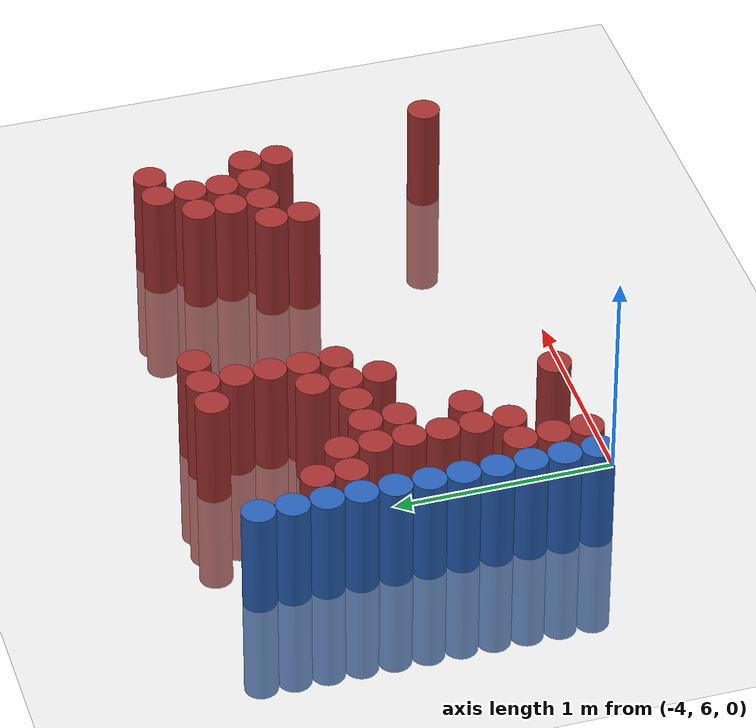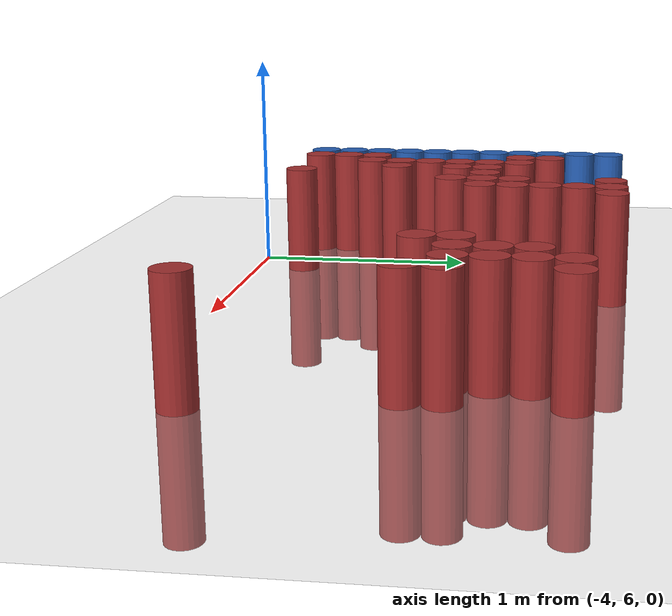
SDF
<sdf version="1.6">
 <world name="default">
  <model name="ground_plane">
   <static>1</static>
   <link name="link">
    <collision name="collision">
     <geometry><plane><normal>0 0 1</normal><size>100 100</size></plane></geometry>
     <surface><friction><ode><mu>100</mu><mu2>50</mu2></ode></friction></surface>
    </collision>
    <visual name="visual">
     <cast_shadows>0</cast_shadows>
     <geometry><plane><normal>0 0 1</normal><size>100 100</size></plane></geometry>
     <material>
      <script><uri>file://media/materials/scripts/gazebo.material</uri><name>Gazebo/Grey</name></script>
     </material>
    </visual>
   </link>
  </model>
  <model name="unit_cylinder_103">
   <static>1</static>
   <pose>-4.425000 6.225000 0.000000 0.000000 0.000000 0.000000</pose>
   <link name="link">
    <inertial>
     <mass>1</mass>
     <inertia><ixx>0.145833</ixx><ixy>0</ixy><ixz>0</ixz><iyy>0.145833</iyy><iyz>0</iyz><izz>0.125</izz></inertia>
    </inertial>
    <collision name="collision">
     <geometry><cylinder><radius>0.075000</radius><length>1</length></cylinder></geometry>
    </collision>
    <visual name="visual">
     <geometry><cylinder><radius>0.075000</radius><length>1</length></cylinder></geometry>
     <material>
      <ambient>0.152000 0.379000 0.720000 1</ambient>
      <diffuse>0.152000 0.379000 0.720000 1</diffuse>
     </material>
     <material>
      <script><name>Gazebo/Grey</name><uri>file://media/materials/scripts/gazebo.material</uri></script>
     </material>
    </visual>
   </link>
  </model>
  <model name="unit_cylinder_104">
   <static>1</static>
   <pose>-4.425000 6.375000 0.000000 0.000000 0.000000 0.000000</pose>
   <link name="link">
    <inertial>
     <mass>1</mass>
     <inertia><ixx>0.145833</ixx><ixy>0</ixy><ixz>0</ixz><iyy>0.145833</iyy><iyz>0</iyz><izz>0.125</izz></inertia>
    </inertial>
    <collision name="collision">
     <geometry><cylinder><radius>0.075000</radius><length>1</length></cylinder></geometry>
    </collision>
    <visual name="visual">
     <geometry><cylinder><radius>0.075000</radius><length>1</length></cylinder></geometry>
     <material>
      <ambient>0.152000 0.379000 0.720000 1</ambient>
      <diffuse>0.152000 0.379000 0.720000 1</diffuse>
     </material>
     <material>
      <script><name>Gazebo/Grey</name><uri>file://media/materials/scripts/gazebo.material</uri></script>
     </material>
    </visual>
   </link>
  </model>
  <model name="unit_cylinder_105">
   <static>1</static>
   <pose>-4.425000 6.525000 0.000000 0.000000 0.000000 0.000000</pose>
   <link name="link">
    <inertial>
     <mass>1</mass>
     <inertia><ixx>0.145833</ixx><ixy>0</ixy><ixz>0</ixz><iyy>0.145833</iyy><iyz>0</iyz><izz>0.125</izz></inertia>
    </inertial>
    <collision name="collision">
     <geometry><cylinder><radius>0.075000</radius><length>1</length></cylinder></geometry>
    </collision>
    <visual name="visual">
     <geometry><cylinder><radius>0.075000</radius><length>1</length></cylinder></geometry>
     <material>
      <ambient>0.152000 0.379000 0.720000 1</ambient>
      <diffuse>0.152000 0.379000 0.720000 1</diffuse>
     </material>
     <material>
      <script><name>Gazebo/Grey</name><uri>file://media/materials/scripts/gazebo.material</uri></script>
     </material>
    </visual>
   </link>
  </model>
  <model name="unit_cylinder_106">
   <static>1</static>
   <pose>-4.425000 6.675000 0.000000 0.000000 0.000000 0.000000</pose>
   <link name="link">
    <inertial>
     <mass>1</mass>
     <inertia><ixx>0.145833</ixx><ixy>0</ixy><ixz>0</ixz><iyy>0.145833</iyy><iyz>0</iyz><izz>0.125</izz></inertia>
    </inertial>
    <collision name="collision">
     <geometry><cylinder><radius>0.075000</radius><length>1</length></cylinder></geometry>
    </collision>
    <visual name="visual">
     <geometry><cylinder><radius>0.075000</radius><length>1</length></cylinder></geometry>
     <material>
      <ambient>0.152000 0.379000 0.720000 1</ambient>
      <diffuse>0.152000 0.379000 0.720000 1</diffuse>
     </material>
     <material>
      <script><name>Gazebo/Grey</name><uri>file://media/materials/scripts/gazebo.material</uri></script>
     </material>
    </visual>
   </link>
  </model>
  <model name="unit_cylinder_107">
   <static>1</static>
   <pose>-4.425000 6.825000 0.000000 0.000000 0.000000 0.000000</pose>
   <link name="link">
    <inertial>
     <mass>1</mass>
     <inertia><ixx>0.145833</ixx><ixy>0</ixy><ixz>0</ixz><iyy>0.145833</iyy><iyz>0</iyz><izz>0.125</izz></inertia>
    </inertial>
    <collision name="collision">
     <geometry><cylinder><radius>0.075000</radius><length>1</length></cylinder></geometry>
    </collision>
    <visual name="visual">
     <geometry><cylinder><radius>0.075000</radius><length>1</length></cylinder></geometry>
     <material>
      <ambient>0.152000 0.379000 0.720000 1</ambient>
      <diffuse>0.152000 0.379000 0.720000 1</diffuse>
     </material>
     <material>
      <script><name>Gazebo/Grey</name><uri>file://media/materials/scripts/gazebo.material</uri></script>
     </material>
    </visual>
   </link>
  </model>
  <model name="unit_cylinder_108">
   <static>1</static>
   <pose>-4.425000 6.975000 0.000000 0.000000 0.000000 0.000000</pose>
   <link name="link">
    <inertial>
     <mass>1</mass>
     <inertia><ixx>0.145833</ixx><ixy>0</ixy><ixz>0</ixz><iyy>0.145833</iyy><iyz>0</iyz><izz>0.125</izz></inertia>
    </inertial>
    <collision name="collision">
     <geometry><cylinder><radius>0.075000</radius><length>1</length></cylinder></geometry>
    </collision>
    <visual name="visual">
     <geometry><cylinder><radius>0.075000</radius><length>1</length></cylinder></geometry>
     <material>
      <ambient>0.152000 0.379000 0.720000 1</ambient>
      <diffuse>0.152000 0.379000 0.720000 1</diffuse>
     </material>
     <material>
      <script><name>Gazebo/Grey</name><uri>file://media/materials/scripts/gazebo.material</uri></script>
     </material>
    </visual>
   </link>
  </model>
  <model name="unit_cylinder_109">
   <static>1</static>
   <pose>-4.425000 7.125000 0.000000 0.000000 0.000000 0.000000</pose>
   <link name="link">
    <inertial>
     <mass>1</mass>
     <inertia><ixx>0.145833</ixx><ixy>0</ixy><ixz>0</ixz><iyy>0.145833</iyy><iyz>0</iyz><izz>0.125</izz></inertia>
    </inertial>
    <collision name="collision">
     <geometry><cylinder><radius>0.075000</radius><length>1</length></cylinder></geometry>
    </collision>
    <visual name="visual">
     <geometry><cylinder><radius>0.075000</radius><length>1</length></cylinder></geometry>
     <material>
      <ambient>0.152000 0.379000 0.720000 1</ambient>
      <diffuse>0.152000 0.379000 0.720000 1</diffuse>
     </material>
     <material>
      <script><name>Gazebo/Grey</name><uri>file://media/materials/scripts/gazebo.material</uri></script>
     </material>
    </visual>
   </link>
  </model>
  <model name="unit_cylinder_110">
   <static>1</static>
   <pose>-4.425000 7.275000 0.000000 0.000000 0.000000 0.000000</pose>
   <link name="link">
    <inertial>
     <mass>1</mass>
     <inertia><ixx>0.145833</ixx><ixy>0</ixy><ixz>0</ixz><iyy>0.145833</iyy><iyz>0</iyz><izz>0.125</izz></inertia>
    </inertial>
    <collision name="collision">
     <geometry><cylinder><radius>0.075000</radius><length>1</length></cylinder></geometry>
    </collision>
    <visual name="visual">
     <geometry><cylinder><radius>0.075000</radius><length>1</length></cylinder></geometry>
     <material>
      <ambient>0.152000 0.379000 0.720000 1</ambient>
      <diffuse>0.152000 0.379000 0.720000 1</diffuse>
     </material>
     <material>
      <script><name>Gazebo/Grey</name><uri>file://media/materials/scripts/gazebo.material</uri></script>
     </material>
    </visual>
   </link>
  </model>
  <model name="unit_cylinder_111">
   <static>1</static>
   <pose>-4.425000 7.425000 0.000000 0.000000 0.000000 0.000000</pose>
   <link name="link">
    <inertial>
     <mass>1</mass>
     <inertia><ixx>0.145833</ixx><ixy>0</ixy><ixz>0</ixz><iyy>0.145833</iyy><iyz>0</iyz><izz>0.125</izz></inertia>
    </inertial>
    <collision name="collision">
     <geometry><cylinder><radius>0.075000</radius><length>1</length></cylinder></geometry>
    </collision>
    <visual name="visual">
     <geometry><cylinder><radius>0.075000</radius><length>1</length></cylinder></geometry>
     <material>
      <ambient>0.152000 0.379000 0.720000 1</ambient>
      <diffuse>0.152000 0.379000 0.720000 1</diffuse>
     </material>
     <material>
      <script><name>Gazebo/Grey</name><uri>file://media/materials/scripts/gazebo.material</uri></script>
     </material>
    </visual>
   </link>
  </model>
  <model name="unit_cylinder_112">
   <static>1</static>
   <pose>-4.425000 7.575000 0.000000 0.000000 0.000000 0.000000</pose>
   <link name="link">
    <inertial>
     <mass>1</mass>
     <inertia><ixx>0.145833</ixx><ixy>0</ixy><ixz>0</ixz><iyy>0.145833</iyy><iyz>0</iyz><izz>0.125</izz></inertia>
    </inertial>
    <collision name="collision">
     <geometry><cylinder><radius>0.075000</radius><length>1</length></cylinder></geometry>
    </collision>
    <visual name="visual">
     <geometry><cylinder><radius>0.075000</radius><length>1</length></cylinder></geometry>
     <material>
      <ambient>0.152000 0.379000 0.720000 1</ambient>
      <diffuse>0.152000 0.379000 0.720000 1</diffuse>
     </material>
     <material>
      <script><name>Gazebo/Grey</name><uri>file://media/materials/scripts/gazebo.material</uri></script>
     </material>
    </visual>
   </link>
  </model>
  <model name="unit_cylinder_113">
   <static>1</static>
   <pose>-4.425000 7.725000 0.000000 0.000000 0.000000 0.000000</pose>
   <link name="link">
    <inertial>
     <mass>1</mass>
     <inertia><ixx>0.145833</ixx><ixy>0</ixy><ixz>0</ixz><iyy>0.145833</iyy><iyz>0</iyz><izz>0.125</izz></inertia>
    </inertial>
    <collision name="collision">
     <geometry><cylinder><radius>0.075000</radius><length>1</length></cylinder></geometry>
    </collision>
    <visual name="visual">
     <geometry><cylinder><radius>0.075000</radius><length>1</length></cylinder></geometry>
     <material>
      <ambient>0.152000 0.379000 0.720000 1</ambient>
      <diffuse>0.152000 0.379000 0.720000 1</diffuse>
     </material>
     <material>
      <script><name>Gazebo/Grey</name><uri>file://media/materials/scripts/gazebo.material</uri></script>
     </material>
    </visual>
   </link>
  </model>
  <model name="unit_cylinder_129">
   <static>1</static>
   <pose>-4.275000 6.225000 0.000000 0.000000 0.000000 0.000000</pose>
   <link name="link">
    <inertial>
     <mass>1</mass>
     <inertia><ixx>0.145833</ixx><ixy>0</ixy><ixz>0</ixz><iyy>0.145833</iyy><iyz>0</iyz><izz>0.125</izz></inertia>
    </inertial>
    <collision name="collision">
     <geometry><cylinder><radius>0.075000</radius><length>1</length></cylinder></geometry>
    </collision>
    <visual name="visual">
     <geometry><cylinder><radius>0.075000</radius><length>1</length></cylinder></geometry>
     <material>
      <ambient>0.648000 0.192000 0.192000 1</ambient>
      <diffuse>0.648000 0.192000 0.192000 1</diffuse>
     </material>
     <material>
      <script><name>Gazebo/Grey</name><uri>file://media/materials/scripts/gazebo.material</uri></script>
     </material>
    </visual>
   </link>
  </model>
  <model name="unit_cylinder_130">
   <static>1</static>
   <pose>-4.275000 6.375000 0.000000 0.000000 0.000000 0.000000</pose>
   <link name="link">
    <inertial>
     <mass>1</mass>
     <inertia><ixx>0.145833</ixx><ixy>0</ixy><ixz>0</ixz><iyy>0.145833</iyy><iyz>0</iyz><izz>0.125</izz></inertia>
    </inertial>
    <collision name="collision">
     <geometry><cylinder><radius>0.075000</radius><length>1</length></cylinder></geometry>
    </collision>
    <visual name="visual">
     <geometry><cylinder><radius>0.075000</radius><length>1</length></cylinder></geometry>
     <material>
      <ambient>0.648000 0.192000 0.192000 1</ambient>
      <diffuse>0.648000 0.192000 0.192000 1</diffuse>
     </material>
     <material>
      <script><name>Gazebo/Grey</name><uri>file://media/materials/scripts/gazebo.material</uri></script>
     </material>
    </visual>
   </link>
  </model>
  <model name="unit_cylinder_131">
   <static>1</static>
   <pose>-4.275000 6.525000 0.000000 0.000000 0.000000 0.000000</pose>
   <link name="link">
    <inertial>
     <mass>1</mass>
     <inertia><ixx>0.145833</ixx><ixy>0</ixy><ixz>0</ixz><iyy>0.145833</iyy><iyz>0</iyz><izz>0.125</izz></inertia>
    </inertial>
    <collision name="collision">
     <geometry><cylinder><radius>0.075000</radius><length>1</length></cylinder></geometry>
    </collision>
    <visual name="visual">
     <geometry><cylinder><radius>0.075000</radius><length>1</length></cylinder></geometry>
     <material>
      <ambient>0.648000 0.192000 0.192000 1</ambient>
      <diffuse>0.648000 0.192000 0.192000 1</diffuse>
     </material>
     <material>
      <script><name>Gazebo/Grey</name><uri>file://media/materials/scripts/gazebo.material</uri></script>
     </material>
    </visual>
   </link>
  </model>
  <model name="unit_cylinder_132">
   <static>1</static>
   <pose>-4.275000 7.275000 0.000000 0.000000 0.000000 0.000000</pose>
   <link name="link">
    <inertial>
     <mass>1</mass>
     <inertia><ixx>0.145833</ixx><ixy>0</ixy><ixz>0</ixz><iyy>0.145833</iyy><iyz>0</iyz><izz>0.125</izz></inertia>
    </inertial>
    <collision name="collision">
     <geometry><cylinder><radius>0.075000</radius><length>1</length></cylinder></geometry>
    </collision>
    <visual name="visual">
     <geometry><cylinder><radius>0.075000</radius><length>1</length></cylinder></geometry>
     <material>
      <ambient>0.648000 0.192000 0.192000 1</ambient>
      <diffuse>0.648000 0.192000 0.192000 1</diffuse>
     </material>
     <material>
      <script><name>Gazebo/Grey</name><uri>file://media/materials/scripts/gazebo.material</uri></script>
     </material>
    </visual>
   </link>
  </model>
  <model name="unit_cylinder_133">
   <static>1</static>
   <pose>-4.275000 7.425000 0.000000 0.000000 0.000000 0.000000</pose>
   <link name="link">
    <inertial>
     <mass>1</mass>
     <inertia><ixx>0.145833</ixx><ixy>0</ixy><ixz>0</ixz><iyy>0.145833</iyy><iyz>0</iyz><izz>0.125</izz></inertia>
    </inertial>
    <collision name="collision">
     <geometry><cylinder><radius>0.075000</radius><length>1</length></cylinder></geometry>
    </collision>
    <visual name="visual">
     <geometry><cylinder><radius>0.075000</radius><length>1</length></cylinder></geometry>
     <material>
      <ambient>0.648000 0.192000 0.192000 1</ambient>
      <diffuse>0.648000 0.192000 0.192000 1</diffuse>
     </material>
     <material>
      <script><name>Gazebo/Grey</name><uri>file://media/materials/scripts/gazebo.material</uri></script>
     </material>
    </visual>
   </link>
  </model>
  <model name="unit_cylinder_140">
   <static>1</static>
   <pose>-4.125000 6.525000 0.000000 0.000000 0.000000 0.000000</pose>
   <link name="link">
    <inertial>
     <mass>1</mass>
     <inertia><ixx>0.145833</ixx><ixy>0</ixy><ixz>0</ixz><iyy>0.145833</iyy><iyz>0</iyz><izz>0.125</izz></inertia>
    </inertial>
    <collision name="collision">
     <geometry><cylinder><radius>0.075000</radius><length>1</length></cylinder></geometry>
    </collision>
    <visual name="visual">
     <geometry><cylinder><radius>0.075000</radius><length>1</length></cylinder></geometry>
     <material>
      <ambient>0.648000 0.192000 0.192000 1</ambient>
      <diffuse>0.648000 0.192000 0.192000 1</diffuse>
     </material>
     <material>
      <script><name>Gazebo/Grey</name><uri>file://media/materials/scripts/gazebo.material</uri></script>
     </material>
    </visual>
   </link>
  </model>
  <model name="unit_cylinder_141">
   <static>1</static>
   <pose>-4.125000 6.675000 0.000000 0.000000 0.000000 0.000000</pose>
   <link name="link">
    <inertial>
     <mass>1</mass>
     <inertia><ixx>0.145833</ixx><ixy>0</ixy><ixz>0</ixz><iyy>0.145833</iyy><iyz>0</iyz><izz>0.125</izz></inertia>
    </inertial>
    <collision name="collision">
     <geometry><cylinder><radius>0.075000</radius><length>1</length></cylinder></geometry>
    </collision>
    <visual name="visual">
     <geometry><cylinder><radius>0.075000</radius><length>1</length></cylinder></geometry>
     <material>
      <ambient>0.648000 0.192000 0.192000 1</ambient>
      <diffuse>0.648000 0.192000 0.192000 1</diffuse>
     </material>
     <material>
      <script><name>Gazebo/Grey</name><uri>file://media/materials/scripts/gazebo.material</uri></script>
     </material>
    </visual>
   </link>
  </model>
  <model name="unit_cylinder_142">
   <static>1</static>
   <pose>-4.125000 6.825000 0.000000 0.000000 0.000000 0.000000</pose>
   <link name="link">
    <inertial>
     <mass>1</mass>
     <inertia><ixx>0.145833</ixx><ixy>0</ixy><ixz>0</ixz><iyy>0.145833</iyy><iyz>0</iyz><izz>0.125</izz></inertia>
    </inertial>
    <collision name="collision">
     <geometry><cylinder><radius>0.075000</radius><length>1</length></cylinder></geometry>
    </collision>
    <visual name="visual">
     <geometry><cylinder><radius>0.075000</radius><length>1</length></cylinder></geometry>
     <material>
      <ambient>0.648000 0.192000 0.192000 1</ambient>
      <diffuse>0.648000 0.192000 0.192000 1</diffuse>
     </material>
     <material>
      <script><name>Gazebo/Grey</name><uri>file://media/materials/scripts/gazebo.material</uri></script>
     </material>
    </visual>
   </link>
  </model>
  <model name="unit_cylinder_143">
   <static>1</static>
   <pose>-4.125000 6.975000 0.000000 0.000000 0.000000 0.000000</pose>
   <link name="link">
    <inertial>
     <mass>1</mass>
     <inertia><ixx>0.145833</ixx><ixy>0</ixy><ixz>0</ixz><iyy>0.145833</iyy><iyz>0</iyz><izz>0.125</izz></inertia>
    </inertial>
    <collision name="collision">
     <geometry><cylinder><radius>0.075000</radius><length>1</length></cylinder></geometry>
    </collision>
    <visual name="visual">
     <geometry><cylinder><radius>0.075000</radius><length>1</length></cylinder></geometry>
     <material>
      <ambient>0.648000 0.192000 0.192000 1</ambient>
      <diffuse>0.648000 0.192000 0.192000 1</diffuse>
     </material>
     <material>
      <script><name>Gazebo/Grey</name><uri>file://media/materials/scripts/gazebo.material</uri></script>
     </material>
    </visual>
   </link>
  </model>
  <model name="unit_cylinder_144">
   <static>1</static>
   <pose>-4.125000 7.125000 0.000000 0.000000 0.000000 0.000000</pose>
   <link name="link">
    <inertial>
     <mass>1</mass>
     <inertia><ixx>0.145833</ixx><ixy>0</ixy><ixz>0</ixz><iyy>0.145833</iyy><iyz>0</iyz><izz>0.125</izz></inertia>
    </inertial>
    <collision name="collision">
     <geometry><cylinder><radius>0.075000</radius><length>1</length></cylinder></geometry>
    </collision>
    <visual name="visual">
     <geometry><cylinder><radius>0.075000</radius><length>1</length></cylinder></geometry>
     <material>
      <ambient>0.648000 0.192000 0.192000 1</ambient>
      <diffuse>0.648000 0.192000 0.192000 1</diffuse>
     </material>
     <material>
      <script><name>Gazebo/Grey</name><uri>file://media/materials/scripts/gazebo.material</uri></script>
     </material>
    </visual>
   </link>
  </model>
  <model name="unit_cylinder_145">
   <static>1</static>
   <pose>-4.125000 7.275000 0.000000 0.000000 0.000000 0.000000</pose>
   <link name="link">
    <inertial>
     <mass>1</mass>
     <inertia><ixx>0.145833</ixx><ixy>0</ixy><ixz>0</ixz><iyy>0.145833</iyy><iyz>0</iyz><izz>0.125</izz></inertia>
    </inertial>
    <collision name="collision">
     <geometry><cylinder><radius>0.075000</radius><length>1</length></cylinder></geometry>
    </collision>
    <visual name="visual">
     <geometry><cylinder><radius>0.075000</radius><length>1</length></cylinder></geometry>
     <material>
      <ambient>0.648000 0.192000 0.192000 1</ambient>
      <diffuse>0.648000 0.192000 0.192000 1</diffuse>
     </material>
     <material>
      <script><name>Gazebo/Grey</name><uri>file://media/materials/scripts/gazebo.material</uri></script>
     </material>
    </visual>
   </link>
  </model>
  <model name="unit_cylinder_156">
   <static>1</static>
   <pose>-3.975000 6.675000 0.000000 0.000000 0.000000 0.000000</pose>
   <link name="link">
    <inertial>
     <mass>1</mass>
     <inertia><ixx>0.145833</ixx><ixy>0</ixy><ixz>0</ixz><iyy>0.145833</iyy><iyz>0</iyz><izz>0.125</izz></inertia>
    </inertial>
    <collision name="collision">
     <geometry><cylinder><radius>0.075000</radius><length>1</length></cylinder></geometry>
    </collision>
    <visual name="visual">
     <geometry><cylinder><radius>0.075000</radius><length>1</length></cylinder></geometry>
     <material>
      <ambient>0.648000 0.192000 0.192000 1</ambient>
      <diffuse>0.648000 0.192000 0.192000 1</diffuse>
     </material>
     <material>
      <script><name>Gazebo/Grey</name><uri>file://media/materials/scripts/gazebo.material</uri></script>
     </material>
    </visual>
   </link>
  </model>
  <model name="unit_cylinder_157">
   <static>1</static>
   <pose>-3.975000 6.975000 0.000000 0.000000 0.000000 0.000000</pose>
   <link name="link">
    <inertial>
     <mass>1</mass>
     <inertia><ixx>0.145833</ixx><ixy>0</ixy><ixz>0</ixz><iyy>0.145833</iyy><iyz>0</iyz><izz>0.125</izz></inertia>
    </inertial>
    <collision name="collision">
     <geometry><cylinder><radius>0.075000</radius><length>1</length></cylinder></geometry>
    </collision>
    <visual name="visual">
     <geometry><cylinder><radius>0.075000</radius><length>1</length></cylinder></geometry>
     <material>
      <ambient>0.648000 0.192000 0.192000 1</ambient>
      <diffuse>0.648000 0.192000 0.192000 1</diffuse>
     </material>
     <material>
      <script><name>Gazebo/Grey</name><uri>file://media/materials/scripts/gazebo.material</uri></script>
     </material>
    </visual>
   </link>
  </model>
  <model name="unit_cylinder_158">
   <static>1</static>
   <pose>-3.975000 7.125000 0.000000 0.000000 0.000000 0.000000</pose>
   <link name="link">
    <inertial>
     <mass>1</mass>
     <inertia><ixx>0.145833</ixx><ixy>0</ixy><ixz>0</ixz><iyy>0.145833</iyy><iyz>0</iyz><izz>0.125</izz></inertia>
    </inertial>
    <collision name="collision">
     <geometry><cylinder><radius>0.075000</radius><length>1</length></cylinder></geometry>
    </collision>
    <visual name="visual">
     <geometry><cylinder><radius>0.075000</radius><length>1</length></cylinder></geometry>
     <material>
      <ambient>0.648000 0.192000 0.192000 1</ambient>
      <diffuse>0.648000 0.192000 0.192000 1</diffuse>
     </material>
     <material>
      <script><name>Gazebo/Grey</name><uri>file://media/materials/scripts/gazebo.material</uri></script>
     </material>
    </visual>
   </link>
  </model>
  <model name="unit_cylinder_166">
   <static>1</static>
   <pose>-3.825000 6.225000 0.000000 0.000000 0.000000 0.000000</pose>
   <link name="link">
    <inertial>
     <mass>1</mass>
     <inertia><ixx>0.145833</ixx><ixy>0</ixy><ixz>0</ixz><iyy>0.145833</iyy><iyz>0</iyz><izz>0.125</izz></inertia>
    </inertial>
    <collision name="collision">
     <geometry><cylinder><radius>0.075000</radius><length>1</length></cylinder></geometry>
    </collision>
    <visual name="visual">
     <geometry><cylinder><radius>0.075000</radius><length>1</length></cylinder></geometry>
     <material>
      <ambient>0.648000 0.192000 0.192000 1</ambient>
      <diffuse>0.648000 0.192000 0.192000 1</diffuse>
     </material>
     <material>
      <script><name>Gazebo/Grey</name><uri>file://media/materials/scripts/gazebo.material</uri></script>
     </material>
    </visual>
   </link>
  </model>
  <model name="unit_cylinder_167">
   <static>1</static>
   <pose>-3.825000 7.125000 0.000000 0.000000 0.000000 0.000000</pose>
   <link name="link">
    <inertial>
     <mass>1</mass>
     <inertia><ixx>0.145833</ixx><ixy>0</ixy><ixz>0</ixz><iyy>0.145833</iyy><iyz>0</iyz><izz>0.125</izz></inertia>
    </inertial>
    <collision name="collision">
     <geometry><cylinder><radius>0.075000</radius><length>1</length></cylinder></geometry>
    </collision>
    <visual name="visual">
     <geometry><cylinder><radius>0.075000</radius><length>1</length></cylinder></geometry>
     <material>
      <ambient>0.648000 0.192000 0.192000 1</ambient>
      <diffuse>0.648000 0.192000 0.192000 1</diffuse>
     </material>
     <material>
      <script><name>Gazebo/Grey</name><uri>file://media/materials/scripts/gazebo.material</uri></script>
     </material>
    </visual>
   </link>
  </model>
  <model name="unit_cylinder_172">
   <static>1</static>
   <pose>-3.675000 6.975000 0.000000 0.000000 0.000000 0.000000</pose>
   <link name="link">
    <inertial>
     <mass>1</mass>
     <inertia><ixx>0.145833</ixx><ixy>0</ixy><ixz>0</ixz><iyy>0.145833</iyy><iyz>0</iyz><izz>0.125</izz></inertia>
    </inertial>
    <collision name="collision">
     <geometry><cylinder><radius>0.075000</radius><length>1</length></cylinder></geometry>
    </collision>
    <visual name="visual">
     <geometry><cylinder><radius>0.075000</radius><length>1</length></cylinder></geometry>
     <material>
      <ambient>0.648000 0.192000 0.192000 1</ambient>
      <diffuse>0.648000 0.192000 0.192000 1</diffuse>
     </material>
     <material>
      <script><name>Gazebo/Grey</name><uri>file://media/materials/scripts/gazebo.material</uri></script>
     </material>
    </visual>
   </link>
  </model>
  <model name="unit_cylinder_173">
   <static>1</static>
   <pose>-3.675000 7.125000 0.000000 0.000000 0.000000 0.000000</pose>
   <link name="link">
    <inertial>
     <mass>1</mass>
     <inertia><ixx>0.145833</ixx><ixy>0</ixy><ixz>0</ixz><iyy>0.145833</iyy><iyz>0</iyz><izz>0.125</izz></inertia>
    </inertial>
    <collision name="collision">
     <geometry><cylinder><radius>0.075000</radius><length>1</length></cylinder></geometry>
    </collision>
    <visual name="visual">
     <geometry><cylinder><radius>0.075000</radius><length>1</length></cylinder></geometry>
     <material>
      <ambient>0.648000 0.192000 0.192000 1</ambient>
      <diffuse>0.648000 0.192000 0.192000 1</diffuse>
     </material>
     <material>
      <script><name>Gazebo/Grey</name><uri>file://media/materials/scripts/gazebo.material</uri></script>
     </material>
    </visual>
   </link>
  </model>
  <model name="unit_cylinder_174">
   <static>1</static>
   <pose>-3.675000 7.275000 0.000000 0.000000 0.000000 0.000000</pose>
   <link name="link">
    <inertial>
     <mass>1</mass>
     <inertia><ixx>0.145833</ixx><ixy>0</ixy><ixz>0</ixz><iyy>0.145833</iyy><iyz>0</iyz><izz>0.125</izz></inertia>
    </inertial>
    <collision name="collision">
     <geometry><cylinder><radius>0.075000</radius><length>1</length></cylinder></geometry>
    </collision>
    <visual name="visual">
     <geometry><cylinder><radius>0.075000</radius><length>1</length></cylinder></geometry>
     <material>
      <ambient>0.648000 0.192000 0.192000 1</ambient>
      <diffuse>0.648000 0.192000 0.192000 1</diffuse>
     </material>
     <material>
      <script><name>Gazebo/Grey</name><uri>file://media/materials/scripts/gazebo.material</uri></script>
     </material>
    </visual>
   </link>
  </model>
  <model name="unit_cylinder_175">
   <static>1</static>
   <pose>-3.675000 7.725000 0.000000 0.000000 0.000000 0.000000</pose>
   <link name="link">
    <inertial>
     <mass>1</mass>
     <inertia><ixx>0.145833</ixx><ixy>0</ixy><ixz>0</ixz><iyy>0.145833</iyy><iyz>0</iyz><izz>0.125</izz></inertia>
    </inertial>
    <collision name="collision">
     <geometry><cylinder><radius>0.075000</radius><length>1</length></cylinder></geometry>
    </collision>
    <visual name="visual">
     <geometry><cylinder><radius>0.075000</radius><length>1</length></cylinder></geometry>
     <material>
      <ambient>0.648000 0.192000 0.192000 1</ambient>
      <diffuse>0.648000 0.192000 0.192000 1</diffuse>
     </material>
     <material>
      <script><name>Gazebo/Grey</name><uri>file://media/materials/scripts/gazebo.material</uri></script>
     </material>
    </visual>
   </link>
  </model>
  <model name="unit_cylinder_180">
   <static>1</static>
   <pose>-3.525000 7.125000 0.000000 0.000000 0.000000 0.000000</pose>
   <link name="link">
    <inertial>
     <mass>1</mass>
     <inertia><ixx>0.145833</ixx><ixy>0</ixy><ixz>0</ixz><iyy>0.145833</iyy><iyz>0</iyz><izz>0.125</izz></inertia>
    </inertial>
    <collision name="collision">
     <geometry><cylinder><radius>0.075000</radius><length>1</length></cylinder></geometry>
    </collision>
    <visual name="visual">
     <geometry><cylinder><radius>0.075000</radius><length>1</length></cylinder></geometry>
     <material>
      <ambient>0.648000 0.192000 0.192000 1</ambient>
      <diffuse>0.648000 0.192000 0.192000 1</diffuse>
     </material>
     <material>
      <script><name>Gazebo/Grey</name><uri>file://media/materials/scripts/gazebo.material</uri></script>
     </material>
    </visual>
   </link>
  </model>
  <model name="unit_cylinder_181">
   <static>1</static>
   <pose>-3.525000 7.275000 0.000000 0.000000 0.000000 0.000000</pose>
   <link name="link">
    <inertial>
     <mass>1</mass>
     <inertia><ixx>0.145833</ixx><ixy>0</ixy><ixz>0</ixz><iyy>0.145833</iyy><iyz>0</iyz><izz>0.125</izz></inertia>
    </inertial>
    <collision name="collision">
     <geometry><cylinder><radius>0.075000</radius><length>1</length></cylinder></geometry>
    </collision>
    <visual name="visual">
     <geometry><cylinder><radius>0.075000</radius><length>1</length></cylinder></geometry>
     <material>
      <ambient>0.648000 0.192000 0.192000 1</ambient>
      <diffuse>0.648000 0.192000 0.192000 1</diffuse>
     </material>
     <material>
      <script><name>Gazebo/Grey</name><uri>file://media/materials/scripts/gazebo.material</uri></script>
     </material>
    </visual>
   </link>
  </model>
  <model name="unit_cylinder_182">
   <static>1</static>
   <pose>-3.525000 7.425000 0.000000 0.000000 0.000000 0.000000</pose>
   <link name="link">
    <inertial>
     <mass>1</mass>
     <inertia><ixx>0.145833</ixx><ixy>0</ixy><ixz>0</ixz><iyy>0.145833</iyy><iyz>0</iyz><izz>0.125</izz></inertia>
    </inertial>
    <collision name="collision">
     <geometry><cylinder><radius>0.075000</radius><length>1</length></cylinder></geometry>
    </collision>
    <visual name="visual">
     <geometry><cylinder><radius>0.075000</radius><length>1</length></cylinder></geometry>
     <material>
      <ambient>0.648000 0.192000 0.192000 1</ambient>
      <diffuse>0.648000 0.192000 0.192000 1</diffuse>
     </material>
     <material>
      <script><name>Gazebo/Grey</name><uri>file://media/materials/scripts/gazebo.material</uri></script>
     </material>
    </visual>
   </link>
  </model>
  <model name="unit_cylinder_183">
   <static>1</static>
   <pose>-3.525000 7.575000 0.000000 0.000000 0.000000 0.000000</pose>
   <link name="link">
    <inertial>
     <mass>1</mass>
     <inertia><ixx>0.145833</ixx><ixy>0</ixy><ixz>0</ixz><iyy>0.145833</iyy><iyz>0</iyz><izz>0.125</izz></inertia>
    </inertial>
    <collision name="collision">
     <geometry><cylinder><radius>0.075000</radius><length>1</length></cylinder></geometry>
    </collision>
    <visual name="visual">
     <geometry><cylinder><radius>0.075000</radius><length>1</length></cylinder></geometry>
     <material>
      <ambient>0.648000 0.192000 0.192000 1</ambient>
      <diffuse>0.648000 0.192000 0.192000 1</diffuse>
     </material>
     <material>
      <script><name>Gazebo/Grey</name><uri>file://media/materials/scripts/gazebo.material</uri></script>
     </material>
    </visual>
   </link>
  </model>
  <model name="unit_cylinder_184">
   <static>1</static>
   <pose>-3.525000 7.725000 0.000000 0.000000 0.000000 0.000000</pose>
   <link name="link">
    <inertial>
     <mass>1</mass>
     <inertia><ixx>0.145833</ixx><ixy>0</ixy><ixz>0</ixz><iyy>0.145833</iyy><iyz>0</iyz><izz>0.125</izz></inertia>
    </inertial>
    <collision name="collision">
     <geometry><cylinder><radius>0.075000</radius><length>1</length></cylinder></geometry>
    </collision>
    <visual name="visual">
     <geometry><cylinder><radius>0.075000</radius><length>1</length></cylinder></geometry>
     <material>
      <ambient>0.648000 0.192000 0.192000 1</ambient>
      <diffuse>0.648000 0.192000 0.192000 1</diffuse>
     </material>
     <material>
      <script><name>Gazebo/Grey</name><uri>file://media/materials/scripts/gazebo.material</uri></script>
     </material>
    </visual>
   </link>
  </model>
  <model name="unit_cylinder_189">
   <static>1</static>
   <pose>-3.375000 7.725000 0.000000 0.000000 0.000000 0.000000</pose>
   <link name="link">
    <inertial>
     <mass>1</mass>
     <inertia><ixx>0.145833</ixx><ixy>0</ixy><ixz>0</ixz><iyy>0.145833</iyy><iyz>0</iyz><izz>0.125</izz></inertia>
    </inertial>
    <collision name="collision">
     <geometry><cylinder><radius>0.075000</radius><length>1</length></cylinder></geometry>
    </collision>
    <visual name="visual">
     <geometry><cylinder><radius>0.075000</radius><length>1</length></cylinder></geometry>
     <material>
      <ambient>0.648000 0.192000 0.192000 1</ambient>
      <diffuse>0.648000 0.192000 0.192000 1</diffuse>
     </material>
     <material>
      <script><name>Gazebo/Grey</name><uri>file://media/materials/scripts/gazebo.material</uri></script>
     </material>
    </visual>
   </link>
  </model>
  <model name="unit_cylinder_196">
   <static>1</static>
   <pose>-2.475000 6.975000 0.000000 0.000000 0.000000 0.000000</pose>
   <link name="link">
    <inertial>
     <mass>1</mass>
     <inertia><ixx>0.145833</ixx><ixy>0</ixy><ixz>0</ixz><iyy>0.145833</iyy><iyz>0</iyz><izz>0.125</izz></inertia>
    </inertial>
    <collision name="collision">
     <geometry><cylinder><radius>0.075000</radius><length>1</length></cylinder></geometry>
    </collision>
    <visual name="visual">
     <geometry><cylinder><radius>0.075000</radius><length>1</length></cylinder></geometry>
     <material>
      <ambient>0.648000 0.192000 0.192000 1</ambient>
      <diffuse>0.648000 0.192000 0.192000 1</diffuse>
     </material>
     <material>
      <script><name>Gazebo/Grey</name><uri>file://media/materials/scripts/gazebo.material</uri></script>
     </material>
    </visual>
   </link>
  </model>
  <model name="unit_cylinder_197">
   <static>1</static>
   <pose>-2.475000 7.125000 0.000000 0.000000 0.000000 0.000000</pose>
   <link name="link">
    <inertial>
     <mass>1</mass>
     <inertia><ixx>0.145833</ixx><ixy>0</ixy><ixz>0</ixz><iyy>0.145833</iyy><iyz>0</iyz><izz>0.125</izz></inertia>
    </inertial>
    <collision name="collision">
     <geometry><cylinder><radius>0.075000</radius><length>1</length></cylinder></geometry>
    </collision>
    <visual name="visual">
     <geometry><cylinder><radius>0.075000</radius><length>1</length></cylinder></geometry>
     <material>
      <ambient>0.648000 0.192000 0.192000 1</ambient>
      <diffuse>0.648000 0.192000 0.192000 1</diffuse>
     </material>
     <material>
      <script><name>Gazebo/Grey</name><uri>file://media/materials/scripts/gazebo.material</uri></script>
     </material>
    </visual>
   </link>
  </model>
  <model name="unit_cylinder_202">
   <static>1</static>
   <pose>-2.325000 7.125000 0.000000 0.000000 0.000000 0.000000</pose>
   <link name="link">
    <inertial>
     <mass>1</mass>
     <inertia><ixx>0.145833</ixx><ixy>0</ixy><ixz>0</ixz><iyy>0.145833</iyy><iyz>0</iyz><izz>0.125</izz></inertia>
    </inertial>
    <collision name="collision">
     <geometry><cylinder><radius>0.075000</radius><length>1</length></cylinder></geometry>
    </collision>
    <visual name="visual">
     <geometry><cylinder><radius>0.075000</radius><length>1</length></cylinder></geometry>
     <material>
      <ambient>0.648000 0.192000 0.192000 1</ambient>
      <diffuse>0.648000 0.192000 0.192000 1</diffuse>
     </material>
     <material>
      <script><name>Gazebo/Grey</name><uri>file://media/materials/scripts/gazebo.material</uri></script>
     </material>
    </visual>
   </link>
  </model>
  <model name="unit_cylinder_203">
   <static>1</static>
   <pose>-2.325000 7.275000 0.000000 0.000000 0.000000 0.000000</pose>
   <link name="link">
    <inertial>
     <mass>1</mass>
     <inertia><ixx>0.145833</ixx><ixy>0</ixy><ixz>0</ixz><iyy>0.145833</iyy><iyz>0</iyz><izz>0.125</izz></inertia>
    </inertial>
    <collision name="collision">
     <geometry><cylinder><radius>0.075000</radius><length>1</length></cylinder></geometry>
    </collision>
    <visual name="visual">
     <geometry><cylinder><radius>0.075000</radius><length>1</length></cylinder></geometry>
     <material>
      <ambient>0.648000 0.192000 0.192000 1</ambient>
      <diffuse>0.648000 0.192000 0.192000 1</diffuse>
     </material>
     <material>
      <script><name>Gazebo/Grey</name><uri>file://media/materials/scripts/gazebo.material</uri></script>
     </material>
    </visual>
   </link>
  </model>
  <model name="unit_cylinder_204">
   <static>1</static>
   <pose>-2.325000 7.425000 0.000000 0.000000 0.000000 0.000000</pose>
   <link name="link">
    <inertial>
     <mass>1</mass>
     <inertia><ixx>0.145833</ixx><ixy>0</ixy><ixz>0</ixz><iyy>0.145833</iyy><iyz>0</iyz><izz>0.125</izz></inertia>
    </inertial>
    <collision name="collision">
     <geometry><cylinder><radius>0.075000</radius><length>1</length></cylinder></geometry>
    </collision>
    <visual name="visual">
     <geometry><cylinder><radius>0.075000</radius><length>1</length></cylinder></geometry>
     <material>
      <ambient>0.648000 0.192000 0.192000 1</ambient>
      <diffuse>0.648000 0.192000 0.192000 1</diffuse>
     </material>
     <material>
      <script><name>Gazebo/Grey</name><uri>file://media/materials/scripts/gazebo.material</uri></script>
     </material>
    </visual>
   </link>
  </model>
  <model name="unit_cylinder_210">
   <static>1</static>
   <pose>-2.175000 7.125000 0.000000 0.000000 0.000000 0.000000</pose>
   <link name="link">
    <inertial>
     <mass>1</mass>
     <inertia><ixx>0.145833</ixx><ixy>0</ixy><ixz>0</ixz><iyy>0.145833</iyy><iyz>0</iyz><izz>0.125</izz></inertia>
    </inertial>
    <collision name="collision">
     <geometry><cylinder><radius>0.075000</radius><length>1</length></cylinder></geometry>
    </collision>
    <visual name="visual">
     <geometry><cylinder><radius>0.075000</radius><length>1</length></cylinder></geometry>
     <material>
      <ambient>0.648000 0.192000 0.192000 1</ambient>
      <diffuse>0.648000 0.192000 0.192000 1</diffuse>
     </material>
     <material>
      <script><name>Gazebo/Grey</name><uri>file://media/materials/scripts/gazebo.material</uri></script>
     </material>
    </visual>
   </link>
  </model>
  <model name="unit_cylinder_211">
   <static>1</static>
   <pose>-2.175000 7.275000 0.000000 0.000000 0.000000 0.000000</pose>
   <link name="link">
    <inertial>
     <mass>1</mass>
     <inertia><ixx>0.145833</ixx><ixy>0</ixy><ixz>0</ixz><iyy>0.145833</iyy><iyz>0</iyz><izz>0.125</izz></inertia>
    </inertial>
    <collision name="collision">
     <geometry><cylinder><radius>0.075000</radius><length>1</length></cylinder></geometry>
    </collision>
    <visual name="visual">
     <geometry><cylinder><radius>0.075000</radius><length>1</length></cylinder></geometry>
     <material>
      <ambient>0.648000 0.192000 0.192000 1</ambient>
      <diffuse>0.648000 0.192000 0.192000 1</diffuse>
     </material>
     <material>
      <script><name>Gazebo/Grey</name><uri>file://media/materials/scripts/gazebo.material</uri></script>
     </material>
    </visual>
   </link>
  </model>
  <model name="unit_cylinder_212">
   <static>1</static>
   <pose>-2.175000 7.425000 0.000000 0.000000 0.000000 0.000000</pose>
   <link name="link">
    <inertial>
     <mass>1</mass>
     <inertia><ixx>0.145833</ixx><ixy>0</ixy><ixz>0</ixz><iyy>0.145833</iyy><iyz>0</iyz><izz>0.125</izz></inertia>
    </inertial>
    <collision name="collision">
     <geometry><cylinder><radius>0.075000</radius><length>1</length></cylinder></geometry>
    </collision>
    <visual name="visual">
     <geometry><cylinder><radius>0.075000</radius><length>1</length></cylinder></geometry>
     <material>
      <ambient>0.648000 0.192000 0.192000 1</ambient>
      <diffuse>0.648000 0.192000 0.192000 1</diffuse>
     </material>
     <material>
      <script><name>Gazebo/Grey</name><uri>file://media/materials/scripts/gazebo.material</uri></script>
     </material>
    </visual>
   </link>
  </model>
  <model name="unit_cylinder_213">
   <static>1</static>
   <pose>-2.175000 7.575000 0.000000 0.000000 0.000000 0.000000</pose>
   <link name="link">
    <inertial>
     <mass>1</mass>
     <inertia><ixx>0.145833</ixx><ixy>0</ixy><ixz>0</ixz><iyy>0.145833</iyy><iyz>0</iyz><izz>0.125</izz></inertia>
    </inertial>
    <collision name="collision">
     <geometry><cylinder><radius>0.075000</radius><length>1</length></cylinder></geometry>
    </collision>
    <visual name="visual">
     <geometry><cylinder><radius>0.075000</radius><length>1</length></cylinder></geometry>
     <material>
      <ambient>0.648000 0.192000 0.192000 1</ambient>
      <diffuse>0.648000 0.192000 0.192000 1</diffuse>
     </material>
     <material>
      <script><name>Gazebo/Grey</name><uri>file://media/materials/scripts/gazebo.material</uri></script>
     </material>
    </visual>
   </link>
  </model>
  <model name="unit_cylinder_218">
   <static>1</static>
   <pose>-2.025000 6.975000 0.000000 0.000000 0.000000 0.000000</pose>
   <link name="link">
    <inertial>
     <mass>1</mass>
     <inertia><ixx>0.145833</ixx><ixy>0</ixy><ixz>0</ixz><iyy>0.145833</iyy><iyz>0</iyz><izz>0.125</izz></inertia>
    </inertial>
    <collision name="collision">
     <geometry><cylinder><radius>0.075000</radius><length>1</length></cylinder></geometry>
    </collision>
    <visual name="visual">
     <geometry><cylinder><radius>0.075000</radius><length>1</length></cylinder></geometry>
     <material>
      <ambient>0.648000 0.192000 0.192000 1</ambient>
      <diffuse>0.648000 0.192000 0.192000 1</diffuse>
     </material>
     <material>
      <script><name>Gazebo/Grey</name><uri>file://media/materials/scripts/gazebo.material</uri></script>
     </material>
    </visual>
   </link>
  </model>
  <model name="unit_cylinder_219">
   <static>1</static>
   <pose>-2.025000 7.125000 0.000000 0.000000 0.000000 0.000000</pose>
   <link name="link">
    <inertial>
     <mass>1</mass>
     <inertia><ixx>0.145833</ixx><ixy>0</ixy><ixz>0</ixz><iyy>0.145833</iyy><iyz>0</iyz><izz>0.125</izz></inertia>
    </inertial>
    <collision name="collision">
     <geometry><cylinder><radius>0.075000</radius><length>1</length></cylinder></geometry>
    </collision>
    <visual name="visual">
     <geometry><cylinder><radius>0.075000</radius><length>1</length></cylinder></geometry>
     <material>
      <ambient>0.648000 0.192000 0.192000 1</ambient>
      <diffuse>0.648000 0.192000 0.192000 1</diffuse>
     </material>
     <material>
      <script><name>Gazebo/Grey</name><uri>file://media/materials/scripts/gazebo.material</uri></script>
     </material>
    </visual>
   </link>
  </model>
  <model name="unit_cylinder_220">
   <static>1</static>
   <pose>-2.025000 7.575000 0.000000 0.000000 0.000000 0.000000</pose>
   <link name="link">
    <inertial>
     <mass>1</mass>
     <inertia><ixx>0.145833</ixx><ixy>0</ixy><ixz>0</ixz><iyy>0.145833</iyy><iyz>0</iyz><izz>0.125</izz></inertia>
    </inertial>
    <collision name="collision">
     <geometry><cylinder><radius>0.075000</radius><length>1</length></cylinder></geometry>
    </collision>
    <visual name="visual">
     <geometry><cylinder><radius>0.075000</radius><length>1</length></cylinder></geometry>
     <material>
      <ambient>0.648000 0.192000 0.192000 1</ambient>
      <diffuse>0.648000 0.192000 0.192000 1</diffuse>
     </material>
     <material>
      <script><name>Gazebo/Grey</name><uri>file://media/materials/scripts/gazebo.material</uri></script>
     </material>
    </visual>
   </link>
  </model>
  <model name="unit_cylinder_230">
   <static>1</static>
   <pose>-1.875000 6.225000 0.000000 0.000000 0.000000 0.000000</pose>
   <link name="link">
    <inertial>
     <mass>1</mass>
     <inertia><ixx>0.145833</ixx><ixy>0</ixy><ixz>0</ixz><iyy>0.145833</iyy><iyz>0</iyz><izz>0.125</izz></inertia>
    </inertial>
    <collision name="collision">
     <geometry><cylinder><radius>0.075000</radius><length>1</length></cylinder></geometry>
    </collision>
    <visual name="visual">
     <geometry><cylinder><radius>0.075000</radius><length>1</length></cylinder></geometry>
     <material>
      <ambient>0.648000 0.192000 0.192000 1</ambient>
      <diffuse>0.648000 0.192000 0.192000 1</diffuse>
     </material>
     <material>
      <script><name>Gazebo/Grey</name><uri>file://media/materials/scripts/gazebo.material</uri></script>
     </material>
    </visual>
   </link>
  </model>
 </world>
</sdf>
